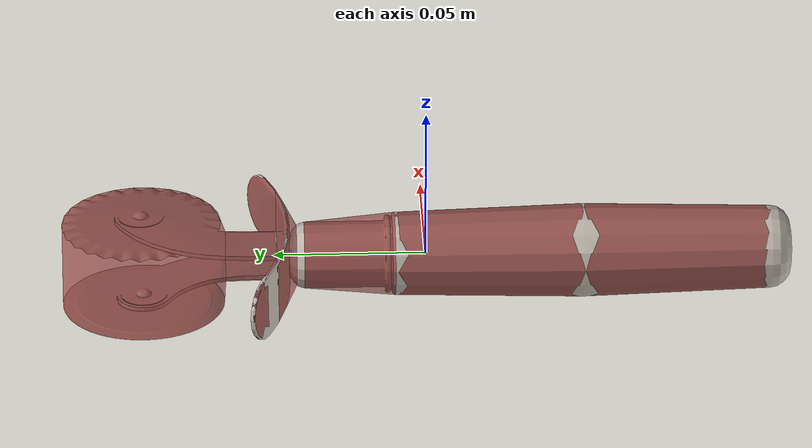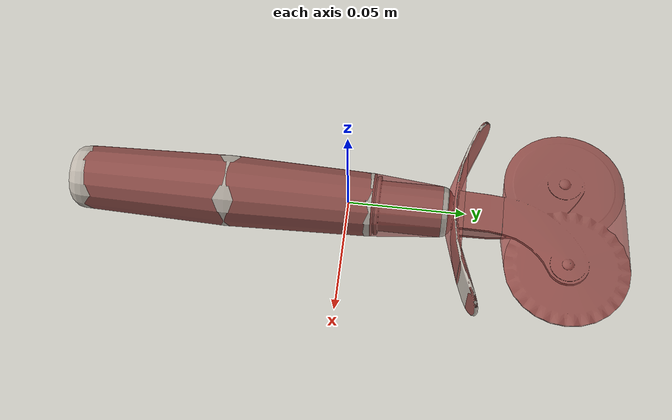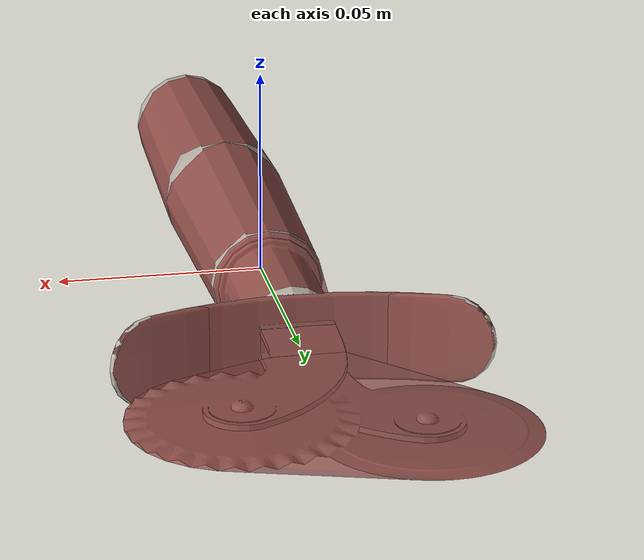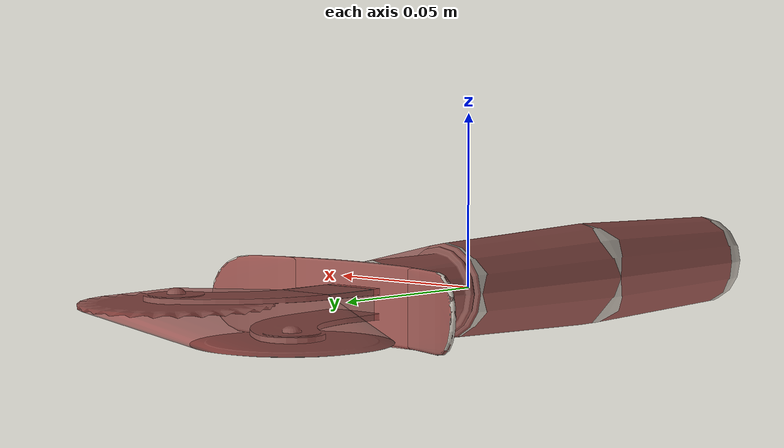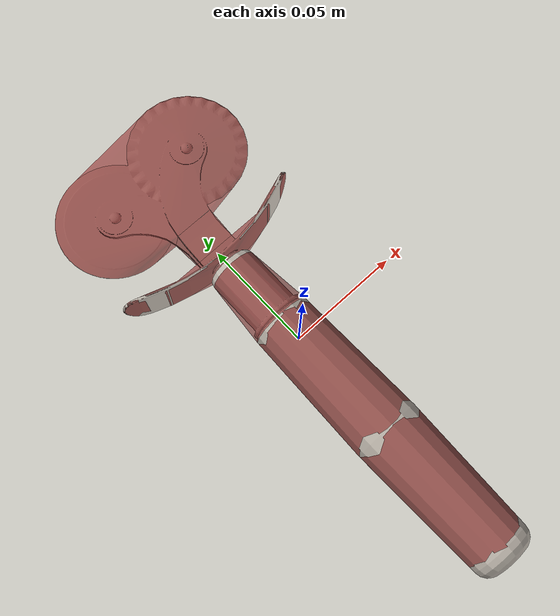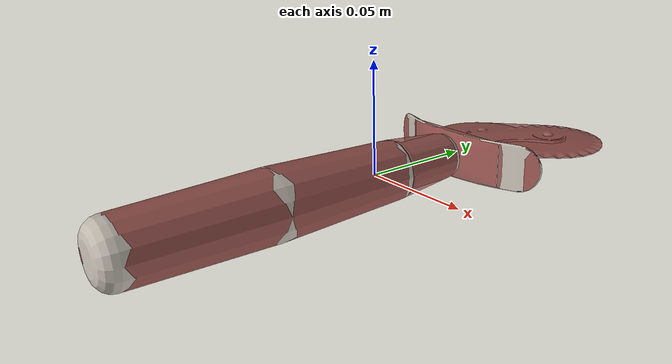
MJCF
<mujoco model="model">
  <option timestep="0.002" gravity="0.0 0.0 -9.81"/>
  <compiler angle="radian"/>
  <asset>
    <mesh file="visual/PizzaCutter006.obj" name="PizzaCutter006_vis"/>
    <mesh file="visual/Prop.obj" name="PizzaCutter006_Prop_vis"/>
    <texture file="visual/T_BC001.png" name="PizzaCutter006_material" type="2d"/>
    <material name="PizzaCutter006_material" rgba="1 1 1 1.0" texture="PizzaCutter006_material" shininess="0.5" specular="0.3103448502657381"/>
    <texture file="visual/T_BC001.png" name="PizzaCutter006_Prop_material" type="2d"/>
    <material name="PizzaCutter006_Prop_material" rgba="1 1 1 1.0" texture="PizzaCutter006_Prop_material" shininess="1" specular="1"/>
    <mesh file="collision/collision_mesh_collision_0.obj" name="PizzaCutter006_collision_mesh_0"/>
    <mesh file="collision/collision_mesh_collision_1.obj" name="PizzaCutter006_collision_mesh_1"/>
    <mesh file="collision/collision_mesh_collision_2.obj" name="PizzaCutter006_collision_mesh_2"/>
    <mesh file="collision/collision_mesh_collision_3.obj" name="PizzaCutter006_collision_mesh_3"/>
    <mesh file="collision/collision_mesh_collision_4.obj" name="PizzaCutter006_collision_mesh_4"/>
    <mesh file="collision/collision_mesh_collision_5.obj" name="PizzaCutter006_collision_mesh_5"/>
  </asset>
  <default>
    <default class="visual">
      <geom conaffinity="0" contype="0" group="1" type="mesh"/>
    </default>
    <default class="collision">
      <geom group="0" rgba="0.5 0 0 0.5" density="1.0" solref="0.004 1" solimp="0.998 0.998 0.001"/>
    </default>
    <default class="spawn">
      <geom group="0" rgba="1 1 1 0.5" contype="0" conaffinity="0"/>
      <site group="0" rgba="1 1 1 0.5"/>
    </default>
    <default class="region">
      <geom group="1" conaffinity="0" contype="0" rgba="0 1 0 0" mass="0"/>
    </default>
  </default>
  <worldbody>
    <body>
      <body name="object">
        <geom mesh="PizzaCutter006_vis" type="mesh" solimp="0.998 0.998 0.001" solref="0.001 1" friction="0.95 0.3 0.1" class="visual" material="PizzaCutter006_material"/>
        <body name="PizzaCutter006_Prop">
          <geom mesh="PizzaCutter006_Prop_vis" type="mesh" solimp="0.998 0.998 0.001" solref="0.001 1" friction="0.95 0.3 0.1" class="visual" material="PizzaCutter006_Prop_material"/>
        </body>
        <geom class="region" name="reg_bbox" type="box" pos="0.0 0.0 0.0" size="0.047377 0.119726 0.015327"/>
        <geom mesh="PizzaCutter006_collision_mesh_0" type="mesh" class="collision"/>
        <geom mesh="PizzaCutter006_collision_mesh_1" type="mesh" class="collision"/>
        <geom mesh="PizzaCutter006_collision_mesh_2" type="mesh" class="collision"/>
        <geom mesh="PizzaCutter006_collision_mesh_3" type="mesh" class="collision"/>
        <geom mesh="PizzaCutter006_collision_mesh_4" type="mesh" class="collision"/>
        <geom mesh="PizzaCutter006_collision_mesh_5" type="mesh" class="collision"/>
      </body>
    </body>
  </worldbody>
  <actuator/>
</mujoco>
